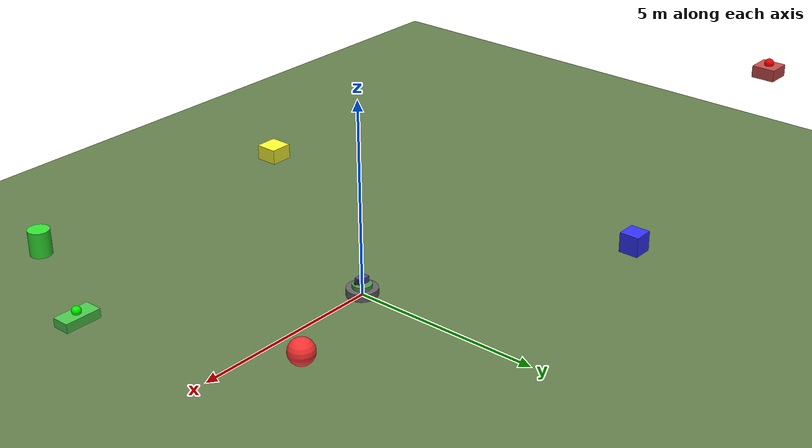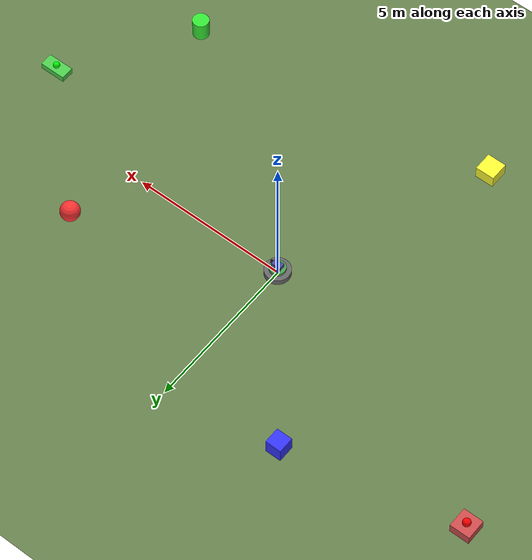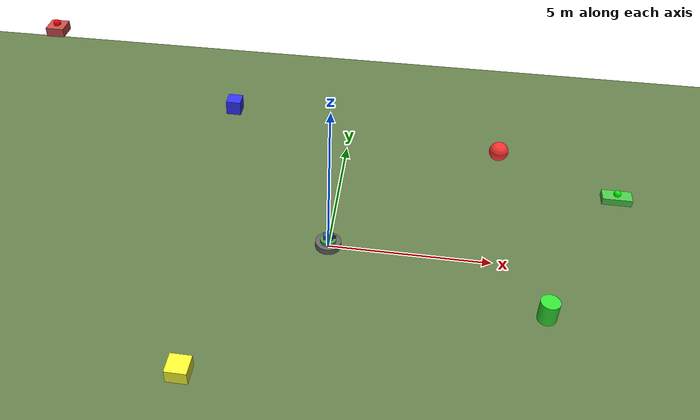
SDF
<?xml version="1.0"?>
<sdf version="1.8">
  <world name="defense_arena">

    <!-- Physics -->
    <physics name="1ms" type="ignored">
      <max_step_size>0.001</max_step_size>
      <real_time_factor>1.0</real_time_factor>
    </physics>

    <!-- Plugins -->
    <plugin filename="gz-sim-physics-system" name="gz::sim::systems::Physics"/>
    <plugin filename="gz-sim-sensors-system" name="gz::sim::systems::Sensors">
      <render_engine>ogre2</render_engine>
    </plugin>
    <plugin filename="gz-sim-user-commands-system" name="gz::sim::systems::UserCommands"/>
    <plugin filename="gz-sim-scene-broadcaster-system" name="gz::sim::systems::SceneBroadcaster"/>
    <plugin filename="gz-sim-imu-system" name="gz::sim::systems::Imu"/>

    <!-- Lighting -->
    <light type="directional" name="sun">
      <cast_shadows>true</cast_shadows>
      <pose>0 0 10 0 0 0</pose>
      <diffuse>0.8 0.8 0.8 1</diffuse>
      <specular>0.2 0.2 0.2 1</specular>
      <attenuation>
        <range>1000</range>
        <constant>0.9</constant>
        <linear>0.01</linear>
        <quadratic>0.001</quadratic>
      </attenuation>
      <direction>-0.5 0.1 -0.9</direction>
    </light>

    <!-- Ground Plane -->
    <model name="ground_plane">
      <static>true</static>
      <link name="link">
        <collision name="collision">
          <geometry>
            <plane>
              <normal>0 0 1</normal>
              <size>100 100</size>
            </plane>
          </geometry>
        </collision>
        <visual name="visual">
          <geometry>
            <plane>
              <normal>0 0 1</normal>
              <size>100 100</size>
            </plane>
          </geometry>
          <material>
            <ambient>0.4 0.5 0.3 1</ambient>
            <diffuse>0.4 0.5 0.3 1</diffuse>
          </material>
        </visual>
      </link>
    </model>

    <!-- Air Defense Turret -->
    <include>
      <uri>model://air_defense_turret</uri>
      <pose>0 0 0 0 0 0</pose>
    </include>

    <!-- ========== TEST TARGETS ========== -->

    <!-- Sabit Hedef 1: Kırmızı Küre -->
    <model name="static_target_red_sphere">
      <static>true</static>
      <pose>5 3 2 0 0 0</pose>
      <link name="link">
        <visual name="visual">
          <geometry>
            <sphere><radius>0.3</radius></sphere>
          </geometry>
          <material>
            <ambient>0.8 0.1 0.1 1</ambient>
            <diffuse>1 0.2 0.2 1</diffuse>
          </material>
        </visual>
        <collision name="collision">
          <geometry><sphere><radius>0.3</radius></sphere></geometry>
        </collision>
      </link>
    </model>

    <!-- Sabit Hedef 2: Mavi Küp -->
    <model name="static_target_blue_cube">
      <static>true</static>
      <pose>-4 5 1.5 0 0 0</pose>
      <link name="link">
        <visual name="visual">
          <geometry>
            <box><size>0.5 0.5 0.5</size></box>
          </geometry>
          <material>
            <ambient>0.1 0.1 0.8 1</ambient>
            <diffuse>0.2 0.2 1 1</diffuse>
          </material>
        </visual>
        <collision name="collision">
          <geometry><box><size>0.5 0.5 0.5</size></box></geometry>
        </collision>
      </link>
    </model>

    <!-- Sabit Hedef 3: Yeşil Silindir -->
    <model name="static_target_green_cylinder">
      <static>true</static>
      <pose>6 -4 2.5 0 0 0</pose>
      <link name="link">
        <visual name="visual">
          <geometry>
            <cylinder><radius>0.25</radius><length>0.6</length></cylinder>
          </geometry>
          <material>
            <ambient>0.1 0.7 0.1 1</ambient>
            <diffuse>0.2 0.9 0.2 1</diffuse>
          </material>
        </visual>
        <collision name="collision">
          <geometry><cylinder><radius>0.25</radius><length>0.6</length></cylinder></geometry>
        </collision>
      </link>
    </model>

    <!-- Sabit Hedef 4: Sarı Üçgen Prizma -->
    <model name="static_target_yellow_triangle">
      <static>true</static>
      <pose>-3 -6 1 0 0 0</pose>
      <link name="link">
        <visual name="visual">
          <geometry>
            <box><size>0.6 0.6 0.4</size></box>
          </geometry>
          <material>
            <ambient>0.8 0.8 0.1 1</ambient>
            <diffuse>1 1 0.2 1</diffuse>
          </material>
        </visual>
        <collision name="collision">
          <geometry><box><size>0.6 0.6 0.4</size></box></geometry>
        </collision>
      </link>
    </model>

    <!-- Hareketli Hedef 1: Dost (Yeşil marker ile) -->
    <model name="moving_target_friend">
      <pose>8 0 3 0 0 0</pose>
      <link name="body">
        <inertial>
          <mass>1.0</mass>
          <inertia>
            <ixx>0.1</ixx><ixy>0</ixy><ixz>0</ixz>
            <iyy>0.1</iyy><iyz>0</iyz>
            <izz>0.1</izz>
          </inertia>
        </inertial>
        <visual name="body_visual">
          <geometry>
            <box><size>0.8 0.4 0.2</size></box>
          </geometry>
          <material>
            <ambient>0.2 0.6 0.2 1</ambient>
            <diffuse>0.3 0.8 0.3 1</diffuse>
          </material>
        </visual>
        <visual name="marker_visual">
          <pose>0 0 0.15 0 0 0</pose>
          <geometry>
            <sphere><radius>0.1</radius></sphere>
          </geometry>
          <material>
            <ambient>0 1 0 1</ambient>
            <diffuse>0 1 0 1</diffuse>
          </material>
        </visual>
        <collision name="collision">
          <geometry><box><size>0.8 0.4 0.2</size></box></geometry>
        </collision>
      </link>
      <!-- Trajectory plugin for circular motion -->
      <plugin filename="gz-sim-trajectory-follower-system"
              name="gz::sim::systems::TrajectoryFollower">
        <link_name>body</link_name>
        <loop>true</loop>
        <waypoints>
          <waypoint><pose>8 0 3</pose><time>0</time></waypoint>
          <waypoint><pose>6 6 3.5</pose><time>3</time></waypoint>
          <waypoint><pose>0 8 4</pose><time>6</time></waypoint>
          <waypoint><pose>-6 6 3.5</pose><time>9</time></waypoint>
          <waypoint><pose>-8 0 3</pose><time>12</time></waypoint>
          <waypoint><pose>-6 -6 3.5</pose><time>15</time></waypoint>
          <waypoint><pose>0 -8 4</pose><time>18</time></waypoint>
          <waypoint><pose>6 -6 3.5</pose><time>21</time></waypoint>
          <waypoint><pose>8 0 3</pose><time>24</time></waypoint>
        </waypoints>
      </plugin>
    </model>

    <!-- Hareketli Hedef 2: Düşman (Kırmızı marker ile) -->
    <model name="moving_target_enemy">
      <pose>-10 5 4 0 0 0</pose>
      <link name="body">
        <inertial>
          <mass>1.0</mass>
          <inertia>
            <ixx>0.1</ixx><ixy>0</ixy><ixz>0</ixz>
            <iyy>0.1</iyy><iyz>0</iyz>
            <izz>0.1</izz>
          </inertia>
        </inertial>
        <visual name="body_visual">
          <geometry>
            <box><size>0.6 0.6 0.3</size></box>
          </geometry>
          <material>
            <ambient>0.6 0.2 0.2 1</ambient>
            <diffuse>0.8 0.3 0.3 1</diffuse>
          </material>
        </visual>
        <visual name="marker_visual">
          <pose>0 0 0.2 0 0 0</pose>
          <geometry>
            <sphere><radius>0.12</radius></sphere>
          </geometry>
          <material>
            <ambient>1 0 0 1</ambient>
            <diffuse>1 0 0 1</diffuse>
          </material>
        </visual>
        <collision name="collision">
          <geometry><box><size>0.6 0.6 0.3</size></box></geometry>
        </collision>
      </link>
      <!-- Linear back-forth motion -->
      <plugin filename="gz-sim-trajectory-follower-system"
              name="gz::sim::systems::TrajectoryFollower">
        <link_name>body</link_name>
        <loop>true</loop>
        <waypoints>
          <waypoint><pose>-10 5 4</pose><time>0</time></waypoint>
          <waypoint><pose>10 5 5</pose><time>8</time></waypoint>
          <waypoint><pose>10 -5 4</pose><time>12</time></waypoint>
          <waypoint><pose>-10 -5 5</pose><time>20</time></waypoint>
          <waypoint><pose>-10 5 4</pose><time>24</time></waypoint>
        </waypoints>
      </plugin>
    </model>

  </world>
</sdf>

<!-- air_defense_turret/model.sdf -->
<sdf version="1.8">
  <model name="air_defense_turret">
    <static>false</static>

    <!-- Base Link - Sabit platform -->
    <link name="base_link">
      <pose>0 0 0.1 0 0 0</pose>
      <inertial>
        <mass>50.0</mass>
        <inertia>
          <ixx>2.0</ixx><ixy>0</ixy><ixz>0</ixz>
          <iyy>2.0</iyy><iyz>0</iyz>
          <izz>3.0</izz>
        </inertia>
      </inertial>
      <visual name="base_visual">
        <geometry>
          <cylinder>
            <radius>0.4</radius>
            <length>0.2</length>
          </cylinder>
        </geometry>
        <material>
          <ambient>0.3 0.3 0.3 1</ambient>
          <diffuse>0.4 0.4 0.4 1</diffuse>
        </material>
      </visual>
      <collision name="base_collision">
        <geometry>
          <cylinder>
            <radius>0.4</radius>
            <length>0.2</length>
          </cylinder>
        </geometry>
      </collision>
    </link>

    <!-- Pan Link - Yatay dönüş (yaw) -->
    <link name="pan_link">
      <pose relative_to="base_link">0 0 0.15 0 0 0</pose>
      <inertial>
        <mass>10.0</mass>
        <inertia>
          <ixx>0.5</ixx><ixy>0</ixy><ixz>0</ixz>
          <iyy>0.5</iyy><iyz>0</iyz>
          <izz>0.8</izz>
        </inertia>
      </inertial>
      <visual name="pan_visual">
        <geometry>
          <cylinder>
            <radius>0.25</radius>
            <length>0.1</length>
          </cylinder>
        </geometry>
        <material>
          <ambient>0.2 0.4 0.2 1</ambient>
          <diffuse>0.3 0.6 0.3 1</diffuse>
        </material>
      </visual>
      <collision name="pan_collision">
        <geometry>
          <cylinder>
            <radius>0.25</radius>
            <length>0.1</length>
          </cylinder>
        </geometry>
      </collision>
    </link>

    <!-- Tilt Link - Dikey hareket (pitch) -->
    <link name="tilt_link">
      <pose relative_to="pan_link">0 0 0.15 0 0 0</pose>
      <inertial>
        <mass>5.0</mass>
        <inertia>
          <ixx>0.2</ixx><ixy>0</ixy><ixz>0</ixz>
          <iyy>0.3</iyy><iyz>0</iyz>
          <izz>0.2</izz>
        </inertia>
      </inertial>
      <visual name="tilt_visual">
        <geometry>
          <box>
            <size>0.3 0.2 0.15</size>
          </box>
        </geometry>
        <material>
          <ambient>0.2 0.2 0.4 1</ambient>
          <diffuse>0.3 0.3 0.6 1</diffuse>
        </material>
      </visual>
      <collision name="tilt_collision">
        <geometry>
          <box>
            <size>0.3 0.2 0.15</size>
          </box>
        </geometry>
      </collision>

      <!-- Kamera Sensörü -->
      <sensor name="camera" type="camera">
        <pose>0.2 0 0 0 0 0</pose>
        <always_on>true</always_on>
        <update_rate>30</update_rate>
        <camera>
          <horizontal_fov>1.396</horizontal_fov>
          <image>
            <width>640</width>
            <height>480</height>
            <format>R8G8B8</format>
          </image>
          <clip>
            <near>0.1</near>
            <far>100</far>
          </clip>
        </camera>
        <topic>hss/camera</topic>
      </sensor>

      <!-- IMU Sensörü -->
      <sensor name="imu" type="imu">
        <always_on>true</always_on>
        <update_rate>100</update_rate>
        <imu>
          <angular_velocity>
            <x><noise type="gaussian"><mean>0</mean><stddev>0.001</stddev></noise></x>
            <y><noise type="gaussian"><mean>0</mean><stddev>0.001</stddev></noise></y>
            <z><noise type="gaussian"><mean>0</mean><stddev>0.001</stddev></noise></z>
          </angular_velocity>
          <linear_acceleration>
            <x><noise type="gaussian"><mean>0</mean><stddev>0.01</stddev></noise></x>
            <y><noise type="gaussian"><mean>0</mean><stddev>0.01</stddev></noise></y>
            <z><noise type="gaussian"><mean>0</mean><stddev>0.01</stddev></noise></z>
          </linear_acceleration>
        </imu>
        <topic>hss/imu</topic>
      </sensor>
    </link>

    <!-- Kamera Lens Visual -->
    <link name="camera_lens">
      <pose relative_to="tilt_link">0.2 0 0 0 1.5708 0</pose>
      <inertial>
        <mass>0.1</mass>
        <inertia>
          <ixx>0.001</ixx><ixy>0</ixy><ixz>0</ixz>
          <iyy>0.001</iyy><iyz>0</iyz>
          <izz>0.001</izz>
        </inertia>
      </inertial>
      <visual name="lens_visual">
        <geometry>
          <cylinder>
            <radius>0.05</radius>
            <length>0.08</length>
          </cylinder>
        </geometry>
        <material>
          <ambient>0.1 0.1 0.1 1</ambient>
          <diffuse>0.1 0.1 0.1 1</diffuse>
        </material>
      </visual>
    </link>

    <!-- Base sabitlemesi -->
    <joint name="base_fixed" type="fixed">
      <parent>world</parent>
      <child>base_link</child>
    </joint>

    <!-- Pan Joint - Yatay dönüş -->
    <joint name="pan_joint" type="revolute">
      <parent>base_link</parent>
      <child>pan_link</child>
      <axis>
        <xyz>0 0 1</xyz>
        <limit>
          <lower>-3.14159</lower>
          <upper>3.14159</upper>
          <effort>100</effort>
          <velocity>1.0</velocity>
        </limit>
        <dynamics>
          <damping>0.5</damping>
          <friction>0.1</friction>
        </dynamics>
      </axis>
    </joint>

    <!-- Tilt Joint - Dikey hareket -->
    <joint name="tilt_joint" type="revolute">
      <parent>pan_link</parent>
      <child>tilt_link</child>
      <axis>
        <xyz>0 1 0</xyz>
        <limit>
          <lower>-0.785</lower>  <!-- -45 derece -->
          <upper>1.047</upper>   <!-- +60 derece -->
          <effort>50</effort>
          <velocity>0.5</velocity>
        </limit>
        <dynamics>
          <damping>0.3</damping>
          <friction>0.1</friction>
        </dynamics>
      </axis>
    </joint>

    <!-- Kamera lens sabitlemesi -->
    <joint name="lens_fixed" type="fixed">
      <parent>tilt_link</parent>
      <child>camera_lens</child>
    </joint>

    <!-- Joint Controller Plugin -->
    <plugin
      filename="gz-sim-joint-position-controller-system"
      name="gz::sim::systems::JointPositionController">
      <joint_name>pan_joint</joint_name>
      <topic>hss/turret/pan_cmd</topic>
      <p_gain>50</p_gain>
      <i_gain>0.1</i_gain>
      <d_gain>1</d_gain>
    </plugin>

    <plugin
      filename="gz-sim-joint-position-controller-system"
      name="gz::sim::systems::JointPositionController">
      <joint_name>tilt_joint</joint_name>
      <topic>hss/turret/tilt_cmd</topic>
      <p_gain>30</p_gain>
      <i_gain>0.1</i_gain>
      <d_gain>0.5</d_gain>
    </plugin>

    <!-- Joint State Publisher -->
    <plugin
      filename="gz-sim-joint-state-publisher-system"
      name="gz::sim::systems::JointStatePublisher">
      <joint_name>pan_joint</joint_name>
      <joint_name>tilt_joint</joint_name>
      <topic>hss/turret/joint_states</topic>
    </plugin>

  </model>
</sdf>
